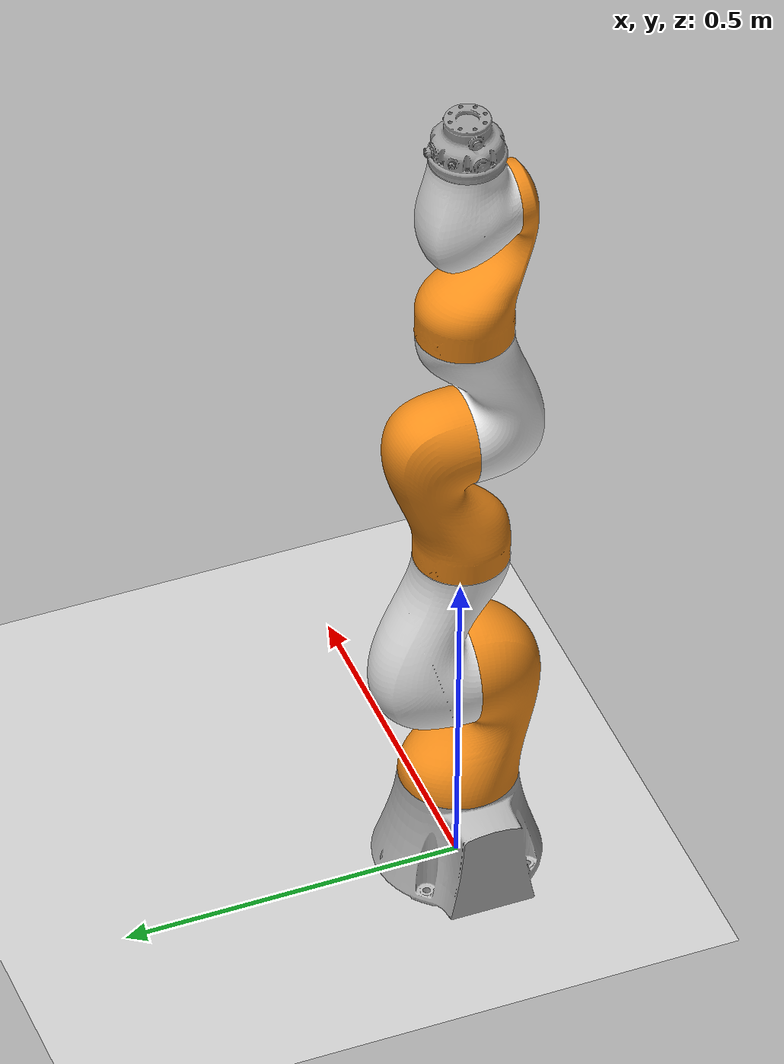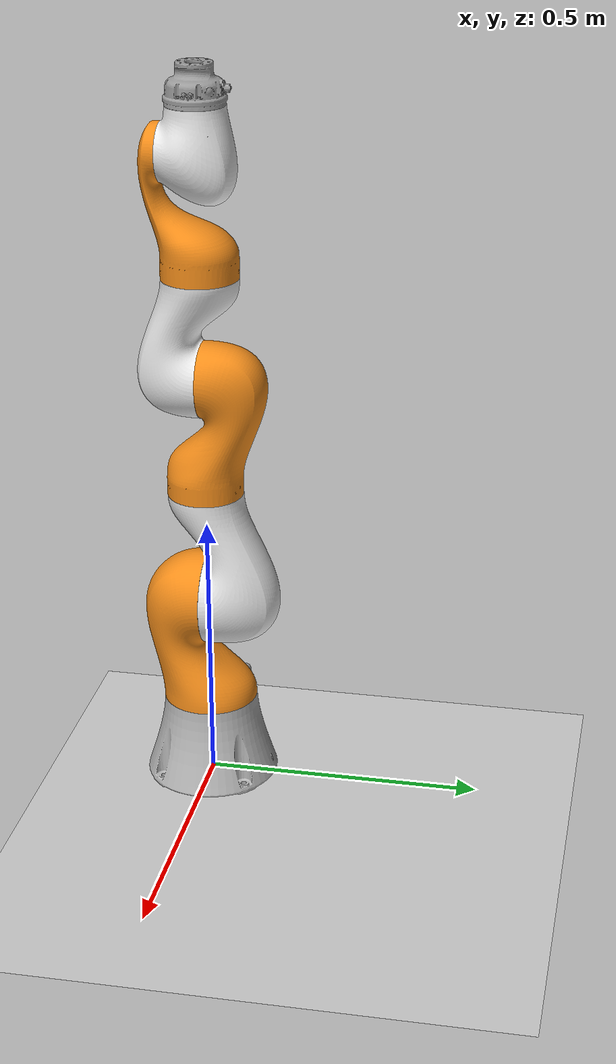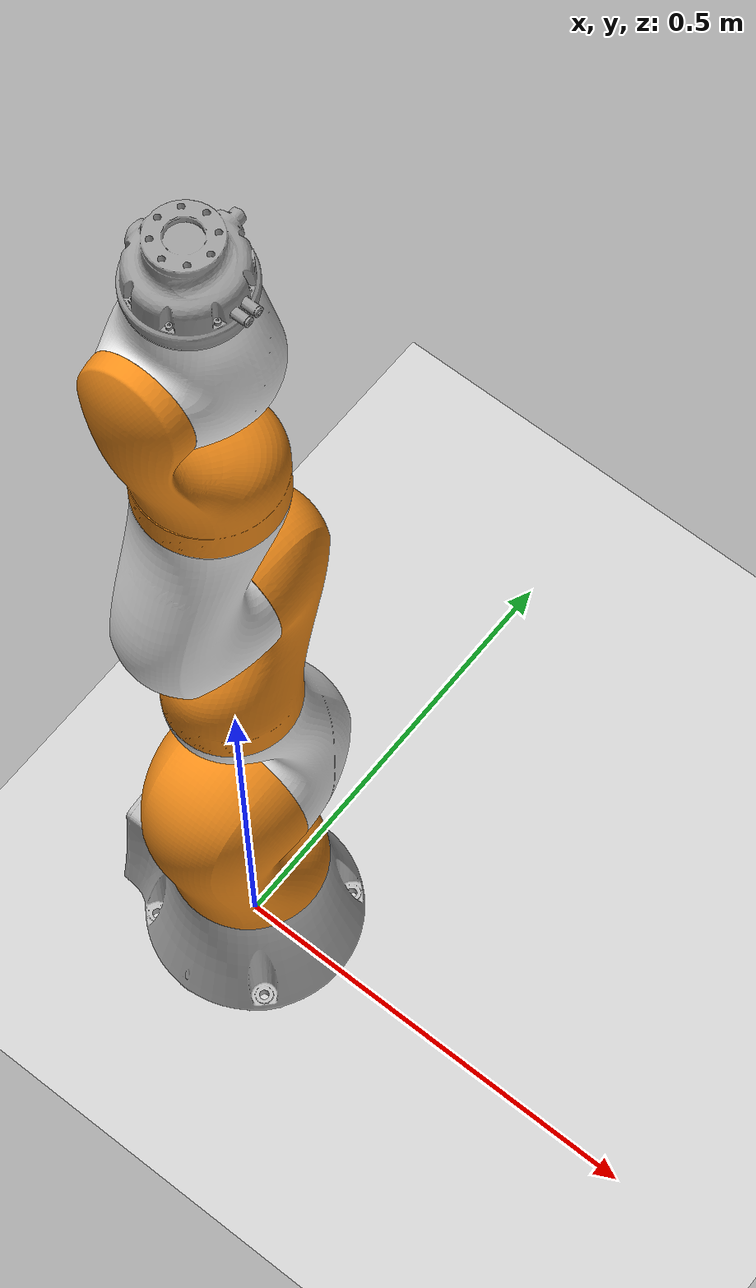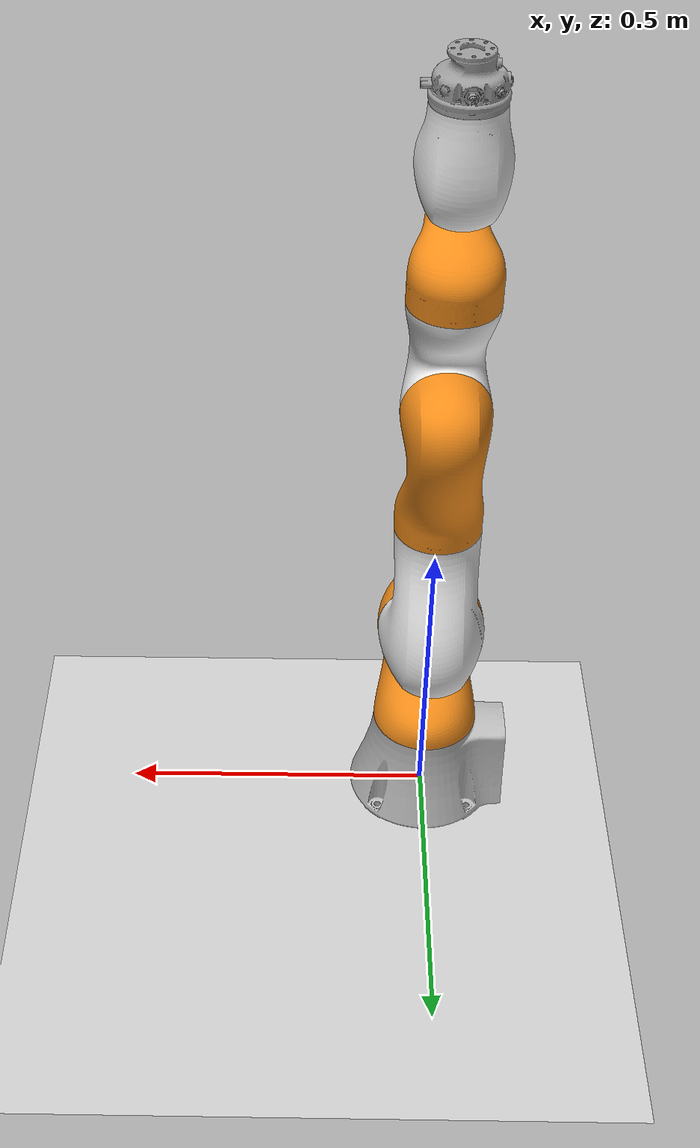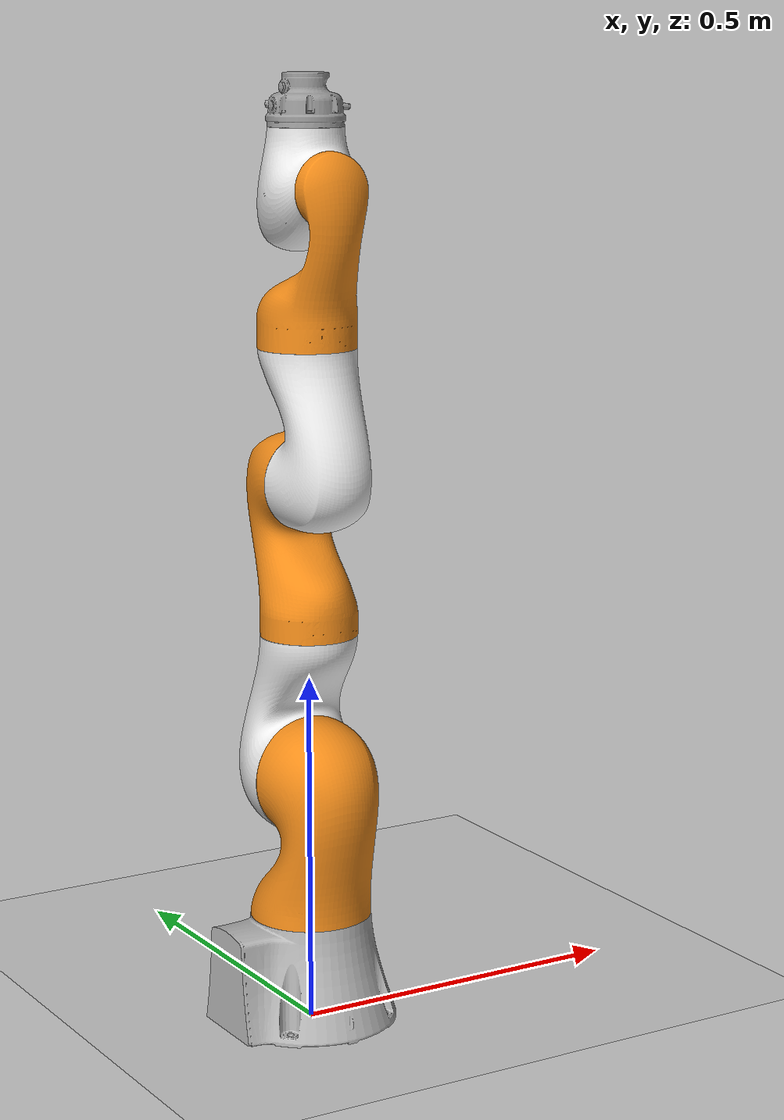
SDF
<?xml version="1.0"?>
<sdf version="1.4">
  <world name="default">

    <physics type='ode'>
      <max_step_size>0.001000</max_step_size>
      <real_time_factor>1.000000</real_time_factor>
      <real_time_update_rate>1000.000000</real_time_update_rate>
      <gravity>0.000000 0.000000 0.000000</gravity>
    </physics>

    <!-- Ground Plane -->
    <include>
      <uri>model://ground_plane</uri>
    </include>

    <include>
      <uri>model://sun</uri>
    </include>

    <include>
      <uri>model://iiwa14</uri>
      <plugin name="iiwa_control" filename="libiiwa_control.so">
        <update_rate>1000.0</update_rate>
      </plugin>
    </include>
  </world>
</sdf>

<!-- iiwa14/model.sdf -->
<sdf version='1.6'>
  <model name='iiwa14'>

    <joint name='fixed' type='fixed'>
      <child>base_link</child>
      <parent>world</parent>
    </joint>

    <link name='base_link'>
      <pose frame=''>0 0 0 0 0 0</pose>
      <inertial>
        <pose frame=''>-0.1 0 0.07 0 -0 0</pose>
        <mass>5</mass>
        <inertia>
          <ixx>0.05</ixx>
          <ixy>0</ixy>
          <ixz>0</ixz>
          <iyy>0.06</iyy>
          <iyz>0</iyz>
          <izz>0.03</izz>
        </inertia>
      </inertial>
      <collision name='base_link_collision'>
        <pose frame=''>0 0 0 0 -0 0</pose>
        <geometry>
          <mesh>
            <scale>1 1 1</scale>
            <uri>model://iiwa14/meshes/iiwa14/collision/link_0_s.stl</uri>
          </mesh>
        </geometry>
      </collision>
      <visual name='base_link_visual'>
        <pose frame=''>0 0 0 0 -0 0</pose>
        <geometry>
          <mesh>
            <scale>1 1 1</scale>
            <uri>model://iiwa14/meshes/iiwa14/visual/link_0.stl</uri>
          </mesh>
        </geometry>
      </visual>
    </link>
    <link name='link_1'>
      <pose frame=''>0 0 0.1575 0 -0 0</pose>
      <inertial>
        <pose frame=''>0 -0.03 0.12 0 -0 0</pose>
        <mass>4</mass>
        <inertia>
          <ixx>0.1</ixx>
          <ixy>0</ixy>
          <ixz>0</ixz>
          <iyy>0.09</iyy>
          <iyz>0</iyz>
          <izz>0.02</izz>
        </inertia>
      </inertial>
      <collision name='link_1_collision'>
        <pose frame=''>0 0 0 0 -0 0</pose>
        <geometry>
          <mesh>
            <scale>1 1 1</scale>
            <uri>model://iiwa14/meshes/iiwa14/collision/link_1_s.stl</uri>
          </mesh>
        </geometry>
        <surface>
          <contact>
            <ode/>
          </contact>
          <friction>
            <ode>
              <mu>0.2</mu>
              <mu2>0.2</mu2>
            </ode>
          </friction>
        </surface>
      </collision>
      <visual name='link_1_visual'>
        <pose frame=''>0 0 0 0 -0 0</pose>
        <geometry>
          <mesh>
            <scale>1 1 1</scale>
            <uri>model://iiwa14/meshes/iiwa14/visual/link_1.stl</uri>
          </mesh>
        </geometry>
        <material>
          <script>
            <name>Gazebo/Orange</name>
            <uri>file://media/materials/scripts/gazebo.material</uri>
          </script>
        </material>
      </visual>
      <gravity>1</gravity>
      <velocity_decay/>
      <self_collide>0</self_collide>
    </link>
    <joint name='joint_0' type='revolute'>
      <pose>0 0 0 0 0 0</pose>
      <child>link_1</child>
      <parent>base_link</parent>
      <axis>
        <xyz>0 0 1</xyz>
        <limit>
          <lower>-2.96706</lower>
          <upper>2.96706</upper>
          <effort>300</effort>
          <velocity>10</velocity>
        </limit>
        <dynamics>
          <damping>0</damping>
          <friction>0</friction>
          <spring_reference>0</spring_reference>
          <spring_stiffness>0</spring_stiffness>
        </dynamics>
        <use_parent_model_frame>1</use_parent_model_frame>
      </axis>
      <physics>
        <provide_feedback>1</provide_feedback>
        <ode>
          <provide_feedback>1</provide_feedback>
          <limit>
            <cfm>0</cfm>
            <erp>0.2</erp>
          </limit>
        </ode>
      </physics>
    </joint>
    <link name='link_2'>
      <pose frame=''>0 0 0.36 1.5708 -0 -3.14159</pose>
      <inertial>
        <pose frame=''>0.0003 0.059 0.042 0 -0 0</pose>
        <mass>4</mass>
        <inertia>
          <ixx>0.05</ixx>
          <ixy>0</ixy>
          <ixz>0</ixz>
          <iyy>0.018</iyy>
          <iyz>0</iyz>
          <izz>0.044</izz>
        </inertia>
      </inertial>
      <collision name='link_2_collision'>
        <pose frame=''>0 0 0 0 -0 0</pose>
        <geometry>
          <mesh>
            <scale>1 1 1</scale>
            <uri>model://iiwa14/meshes/iiwa14/collision/link_2_s.stl</uri>
          </mesh>
        </geometry>
        <surface>
          <contact>
            <ode/>
          </contact>
          <friction>
            <ode>
              <mu>0.2</mu>
              <mu2>0.2</mu2>
            </ode>
          </friction>
        </surface>
      </collision>
      <visual name='link_2_visual'>
        <pose frame=''>0 0 0 0 -0 0</pose>
        <geometry>
          <mesh>
            <scale>1 1 1</scale>
            <uri>model://iiwa14/meshes/iiwa14/visual/link_2.stl</uri>
          </mesh>
        </geometry>
        <material>
          <script>
            <name>Gazebo/White</name>
            <uri>file://media/materials/scripts/gazebo.material</uri>
          </script>
        </material>
      </visual>
      <gravity>1</gravity>
      <velocity_decay/>
      <self_collide>0</self_collide>
    </link>
    <joint name='joint_1' type='revolute'>
      <pose>0 0 0 0 0 0</pose>
      <child>link_2</child>
      <parent>link_1</parent>
      <axis>
        <xyz>-0 1 0</xyz>
        <limit>
          <lower>-2.0944</lower>
          <upper>2.0944</upper>
          <effort>300</effort>
          <velocity>10</velocity>
        </limit>
        <dynamics>
          <damping>0</damping>
          <friction>0</friction>
          <spring_reference>0</spring_reference>
          <spring_stiffness>0</spring_stiffness>
        </dynamics>
        <use_parent_model_frame>1</use_parent_model_frame>
      </axis>
      <physics>
        <provide_feedback>1</provide_feedback>
        <ode>
          <provide_feedback>1</provide_feedback>
          <limit>
            <cfm>0</cfm>
            <erp>0.2</erp>
          </limit>
        </ode>
      </physics>
    </joint>
    <link name='link_3'>
      <pose frame=''>0 -0 0.5645 0 0 0</pose>
      <inertial>
        <pose frame=''>0 0.03 0.13 0 -0 0</pose>
        <mass>3</mass>
        <inertia>
          <ixx>0.08</ixx>
          <ixy>0</ixy>
          <ixz>0</ixz>
          <iyy>0.075</iyy>
          <iyz>0</iyz>
          <izz>0.01</izz>
        </inertia>
      </inertial>
      <collision name='link_3_collision'>
        <pose frame=''>0 0 0 0 -0 0</pose>
        <geometry>
          <mesh>
            <scale>1 1 1</scale>
            <uri>model://iiwa14/meshes/iiwa14/collision/link_3_s.stl</uri>
          </mesh>
        </geometry>
        <surface>
          <contact>
            <ode/>
          </contact>
          <friction>
            <ode>
              <mu>0.2</mu>
              <mu2>0.2</mu2>
            </ode>
          </friction>
        </surface>
      </collision>
      <visual name='link_3_visual'>
        <pose frame=''>0 0 0 0 -0 0</pose>
        <geometry>
          <mesh>
            <scale>1 1 1</scale>
            <uri>model://iiwa14/meshes/iiwa14/visual/link_3.stl</uri>
          </mesh>
        </geometry>
        <material>
          <script>
            <name>Gazebo/Orange</name>
            <uri>file://media/materials/scripts/gazebo.material</uri>
          </script>
        </material>
      </visual>
      <gravity>1</gravity>
      <velocity_decay/>
      <self_collide>0</self_collide>
    </link>
    <joint name='joint_2' type='revolute'>
      <pose>0 0 0 0 0 0</pose>
      <child>link_3</child>
      <parent>link_2</parent>
      <axis>
        <xyz>0 0 1</xyz>
        <limit>
          <lower>-2.96706</lower>
          <upper>2.96706</upper>
          <effort>300</effort>
          <velocity>10</velocity>
        </limit>
        <dynamics>
          <damping>0</damping>
          <friction>0</friction>
          <spring_reference>0</spring_reference>
          <spring_stiffness>0</spring_stiffness>
        </dynamics>
        <use_parent_model_frame>1</use_parent_model_frame>
      </axis>
      <physics>
        <provide_feedback>1</provide_feedback>
        <ode>
          <provide_feedback>1</provide_feedback>
          <limit>
            <cfm>0</cfm>
            <erp>0.2</erp>
          </limit>
        </ode>
      </physics>
    </joint>
    <link name='link_4'>
      <pose frame=''>0 -0 0.78 1.5708 0 0</pose>
      <inertial>
        <pose frame=''>0 0.067 0.034 0 -0 0</pose>
        <mass>2.7</mass>
        <inertia>
          <ixx>0.03</ixx>
          <ixy>0</ixy>
          <ixz>0</ixz>
          <iyy>0.01</iyy>
          <iyz>0</iyz>
          <izz>0.029</izz>
        </inertia>
      </inertial>
      <collision name='link_4_collision'>
        <pose frame=''>0 0 0 0 -0 0</pose>
        <geometry>
          <mesh>
            <scale>1 1 1</scale>
            <uri>model://iiwa14/meshes/iiwa14/collision/link_4_s.stl</uri>
          </mesh>
        </geometry>
        <surface>
          <contact>
            <ode/>
          </contact>
          <friction>
            <ode>
              <mu>0.2</mu>
              <mu2>0.2</mu2>
            </ode>
          </friction>
        </surface>
      </collision>
      <visual name='link_4_visual'>
        <pose frame=''>0 0 0 0 -0 0</pose>
        <geometry>
          <mesh>
            <scale>1 1 1</scale>
            <uri>model://iiwa14/meshes/iiwa14/visual/link_4.stl</uri>
          </mesh>
        </geometry>
        <material>
          <script>
            <name>Gazebo/White</name>
            <uri>file://media/materials/scripts/gazebo.material</uri>
          </script>
        </material>
      </visual>
      <gravity>1</gravity>
      <velocity_decay/>
      <self_collide>0</self_collide>
    </link>
    <joint name='joint_3' type='revolute'>
      <pose>0 0 0 0 0 0</pose>
      <child>link_4</child>
      <parent>link_3</parent>
      <axis>
        <xyz>0 -1 0</xyz>
        <limit>
          <lower>-2.0944</lower>
          <upper>2.0944</upper>
          <effort>300</effort>
          <velocity>10</velocity>
        </limit>
        <dynamics>
          <damping>0</damping>
          <friction>0</friction>
          <spring_reference>0</spring_reference>
          <spring_stiffness>0</spring_stiffness>
        </dynamics>
        <use_parent_model_frame>1</use_parent_model_frame>
      </axis>
      <physics>
        <provide_feedback>1</provide_feedback>
        <ode>
          <provide_feedback>1</provide_feedback>
          <limit>
            <cfm>0</cfm>
            <erp>0.2</erp>
          </limit>
        </ode>
      </physics>
    </joint>
    <link name='link_5'>
      <pose frame=''>0 -0 0.9645 0 -0 -3.14159</pose>
      <inertial>
        <pose frame=''>0.0001 0.021 0.076 0 -0 0</pose>
        <mass>1.7</mass>
        <inertia>
          <ixx>0.02</ixx>
          <ixy>0</ixy>
          <ixz>0</ixz>
          <iyy>0.018</iyy>
          <iyz>0</iyz>
          <izz>0.005</izz>
        </inertia>
      </inertial>
      <collision name='link_5_collision'>
        <pose frame=''>0 0 0 0 -0 0</pose>
        <geometry>
          <mesh>
            <scale>1 1 1</scale>
            <uri>model://iiwa14/meshes/iiwa14/collision/link_5_s.stl</uri>
          </mesh>
        </geometry>
        <surface>
          <contact>
            <ode/>
          </contact>
          <friction>
            <ode>
              <mu>0.2</mu>
              <mu2>0.2</mu2>
            </ode>
          </friction>
        </surface>
      </collision>
      <visual name='link_5_visual'>
        <pose frame=''>0 0 0 0 -0 0</pose>
        <geometry>
          <mesh>
            <scale>1 1 1</scale>
            <uri>model://iiwa14/meshes/iiwa14/visual/link_5.stl</uri>
          </mesh>
        </geometry>
        <material>
          <script>
            <name>Gazebo/Orange</name>
            <uri>file://media/materials/scripts/gazebo.material</uri>
          </script>
        </material>
      </visual>
      <gravity>1</gravity>
      <velocity_decay/>
      <self_collide>0</self_collide>
    </link>
    <joint name='joint_4' type='revolute'>
      <pose>0 0 0 0 0 0</pose>
      <child>link_5</child>
      <parent>link_4</parent>
      <axis>
        <xyz>0 0 1</xyz>
        <limit>
          <lower>-2.96706</lower>
          <upper>2.96706</upper>
          <effort>300</effort>
          <velocity>10</velocity>
        </limit>
        <dynamics>
          <damping>0</damping>
          <friction>0</friction>
          <spring_reference>0</spring_reference>
          <spring_stiffness>0</spring_stiffness>
        </dynamics>
        <use_parent_model_frame>1</use_parent_model_frame>
      </axis>
      <physics>
        <provide_feedback>1</provide_feedback>
        <ode>
          <provide_feedback>1</provide_feedback>
          <limit>
            <cfm>0</cfm>
            <erp>0.2</erp>
          </limit>
        </ode>
      </physics>
    </joint>
    <link name='link_6'>
      <pose frame=''>0 0 1.18 1.5708 -0 -3.14159</pose>
      <inertial>
        <pose frame=''>0 0.0006 0.0004 0 -0 0</pose>
        <mass>1.8</mass>
        <inertia>
          <ixx>0.025</ixx>
          <ixy>0</ixy>
          <ixz>0</ixz>
          <iyy>0.0136</iyy>
          <iyz>0</iyz>
          <izz>0.0247</izz>
        </inertia>
      </inertial>
      <collision name='link_6_collision'>
        <pose frame=''>0 0 0 0 -0 0</pose>
        <geometry>
          <mesh>
            <scale>1 1 1</scale>
            <uri>model://iiwa14/meshes/iiwa14/collision/link_6_s.stl</uri>
          </mesh>
        </geometry>
        <surface>
          <contact>
            <ode/>
          </contact>
          <friction>
            <ode>
              <mu>0.2</mu>
              <mu2>0.2</mu2>
            </ode>
          </friction>
        </surface>
      </collision>
      <visual name='link_6_visual'>
        <pose frame=''>0 0 0 0 -0 0</pose>
        <geometry>
          <mesh>
            <scale>1 1 1</scale>
            <uri>model://iiwa14/meshes/iiwa14/visual/link_6.stl</uri>
          </mesh>
        </geometry>
        <material>
          <script>
            <name>Gazebo/White</name>
            <uri>file://media/materials/scripts/gazebo.material</uri>
          </script>
        </material>
      </visual>
      <gravity>1</gravity>
      <velocity_decay/>
      <self_collide>0</self_collide>
    </link>
    <joint name='joint_5' type='revolute'>
      <pose>0 0 0 0 0 0</pose>
      <child>link_6</child>
      <parent>link_5</parent>
      <axis>
        <xyz>-0 1 -0</xyz>
        <limit>
          <lower>-2.0944</lower>
          <upper>2.0944</upper>
          <effort>300</effort>
          <velocity>10</velocity>
        </limit>
        <dynamics>
          <damping>0</damping>
          <friction>0</friction>
          <spring_reference>0</spring_reference>
          <spring_stiffness>0</spring_stiffness>
        </dynamics>
        <use_parent_model_frame>1</use_parent_model_frame>
      </axis>
      <physics>
        <provide_feedback>1</provide_feedback>
        <ode>
          <provide_feedback>1</provide_feedback>
          <limit>
            <cfm>0</cfm>
            <erp>0.2</erp>
          </limit>
        </ode>
      </physics>
    </joint>
    <link name='link_7'>
      <pose frame=''>0 0 1.261 0 0 0</pose>
      <inertial>
        <pose frame=''>0 0 0.02 0 -0 0</pose>
        <mass>0.428571</mass>
        <inertia>
          <ixx>0.01</ixx>
          <ixy>0</ixy>
          <ixz>0</ixz>
          <iyy>0.01</iyy>
          <iyz>0</iyz>
          <izz>0.01</izz>
        </inertia>
      </inertial>
      <collision name='link_7_collision'>
        <pose frame=''>0 0 0 0 -0 0</pose>
        <geometry>
          <mesh>
            <scale>1 1 1</scale>
            <uri>model://iiwa14/meshes/iiwa14/collision/link_7-MF-Touch-pneumatisch_s.stl</uri>
          </mesh>
        </geometry>
        <surface>
          <contact>
            <ode/>
          </contact>
          <friction>
            <ode>
              <mu>0.2</mu>
              <mu2>0.2</mu2>
            </ode>
          </friction>
        </surface>
      </collision>
      <visual name='link_7_visual'>
        <pose frame=''>0 0 0 0 -0 0</pose>
        <geometry>
          <mesh>
            <scale>1 1 1</scale>
            <uri>model://iiwa14/meshes/iiwa14/visual/link_7-MF-Touch-pneumatisch.stl</uri>
          </mesh>
        </geometry>
        <material>
          <script>
            <name>Gazebo/Grey</name>
            <uri>file://media/materials/scripts/gazebo.material</uri>
          </script>
        </material>
      </visual>
      <gravity>1</gravity>
      <velocity_decay/>
      <self_collide>0</self_collide>
      <sensor name="link_7" type="contact">
        <contact>
          <collision>link_7_collision</collision>
        </contact>
      </sensor>
    </link>
    <joint name='joint_6' type='revolute'>
      <pose>0 0 0 0 0 0</pose>
      <child>link_7</child>
      <parent>link_6</parent>
      <axis>
        <xyz>0 0 1</xyz>
        <limit>
          <lower>-3.05433</lower>
          <upper>3.05433</upper>
          <effort>300</effort>
          <velocity>10</velocity>
        </limit>
        <dynamics>
          <damping>0</damping>
          <friction>0</friction>
          <spring_reference>0</spring_reference>
          <spring_stiffness>0</spring_stiffness>
        </dynamics>
        <use_parent_model_frame>1</use_parent_model_frame>
      </axis>
      <physics>
        <provide_feedback>1</provide_feedback>
        <ode>
          <provide_feedback>1</provide_feedback>
          <limit>
            <cfm>0</cfm>
            <erp>0.2</erp>
          </limit>
        </ode>
      </physics>
    </joint>
    <static>0</static>
  </model>
</sdf>
